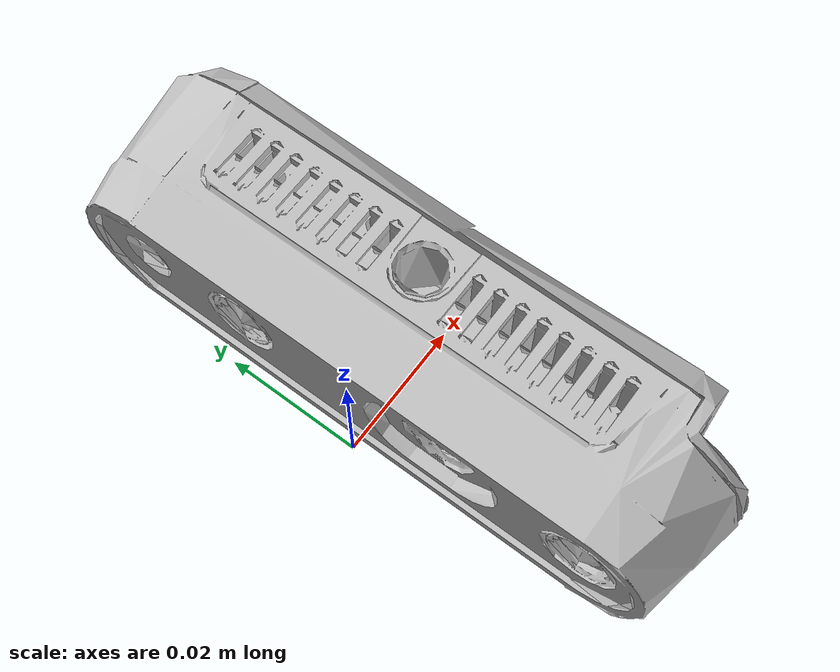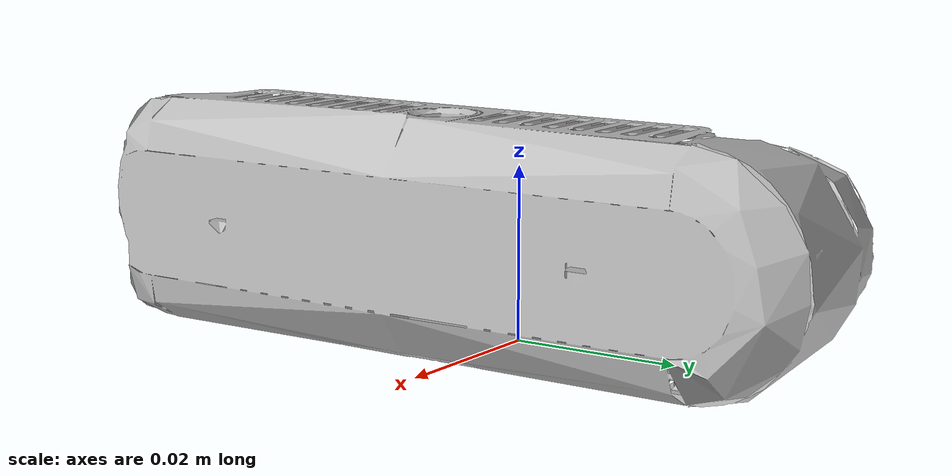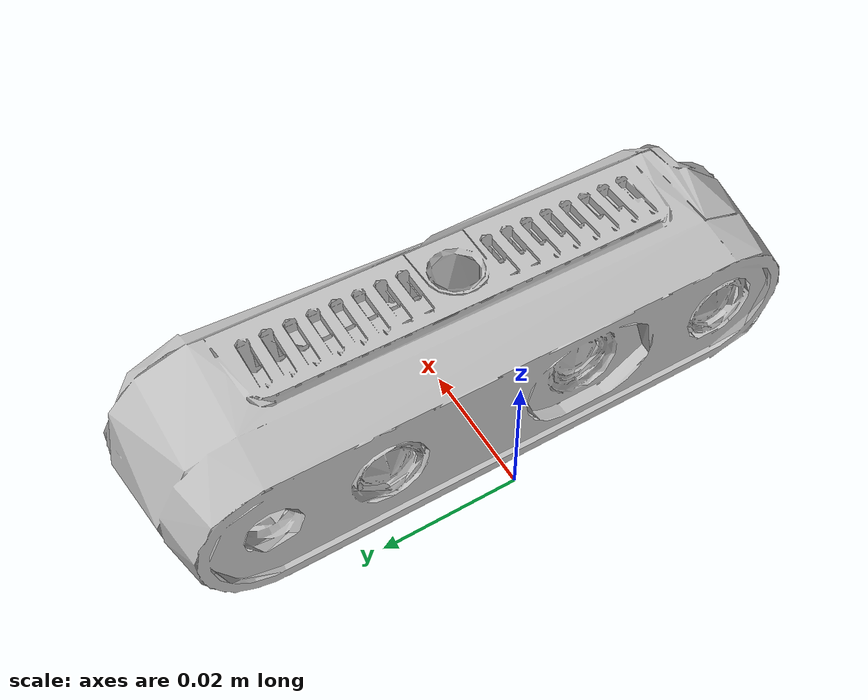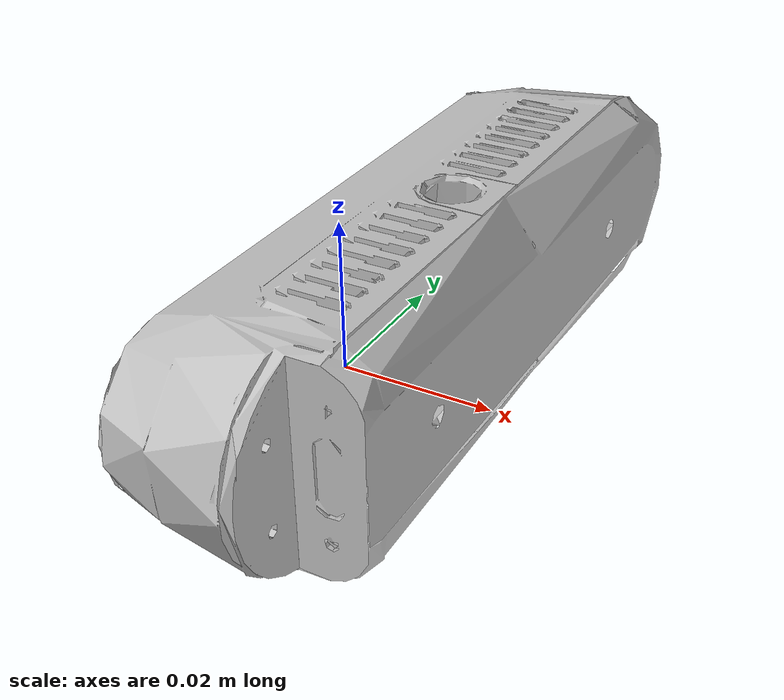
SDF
<?xml version="1.0" ?>
<sdf version="1.6">
  <model name='d435i'>
    <pose frame="">0 0 0.015 0 0 0</pose>
    <link name="camera">
      <inertial>
        <mass>0.0615752</mass>
        <inertia>
          <ixx>9.108e-05</ixx>
          <ixy>0</ixy>
          <ixz>0</ixz>
          <iyy>2.51e-06</iyy>
          <iyz>0</iyz>
          <izz>8.931e-05</izz>
        </inertia>
        <pose frame=''>0 0 0 0 -0 0</pose>
      </inertial>
      <self_collide>0</self_collide>
      <enable_wind>0</enable_wind>
      <kinematic>0</kinematic>
      <gravity>1</gravity>
      <visual name="visual">
        <pose>0 0 0 -1.570796 0 1.570796</pose>
        <geometry>
          <mesh>
            <uri>model://realsense2_description/meshes/d435.dae</uri>
          </mesh>
        </geometry>
      </visual>
      <collision name='collision'>
        <laser_retro>0</laser_retro>
        <max_contacts>10</max_contacts>
        <pose frame=''>0 0 0 0 -0 0</pose>
        <geometry>
          <box>
            <size>0.0078 0.130 0.0192</size>
          </box>
        </geometry>
        <surface>
          <friction>
            <ode>
              <mu>1</mu>
              <mu2>1</mu2>
              <fdir1>0 0 0</fdir1>
              <slip1>0</slip1>
              <slip2>0</slip2>
            </ode>
            <torsional>
              <coefficient>1</coefficient>
              <patch_radius>0</patch_radius>
              <surface_radius>0</surface_radius>
              <use_patch_radius>1</use_patch_radius>
              <ode>
                <slip>0</slip>
              </ode>
            </torsional>
          </friction>
          <bounce>
            <restitution_coefficient>0</restitution_coefficient>
            <threshold>1e+06</threshold>
          </bounce>
          <contact>
            <collide_without_contact>0</collide_without_contact>
            <collide_without_contact_bitmask>1</collide_without_contact_bitmask>
            <collide_bitmask>1</collide_bitmask>
            <ode>
              <soft_cfm>0</soft_cfm>
              <soft_erp>0.2</soft_erp>
              <kp>1e+13</kp>
              <kd>1</kd>
              <max_vel>0.01</max_vel>
              <min_depth>0</min_depth>
            </ode>
            <bullet>
              <split_impulse>1</split_impulse>
              <split_impulse_penetration_threshold>-0.01</split_impulse_penetration_threshold>
              <soft_cfm>0</soft_cfm>
              <soft_erp>0.2</soft_erp>
              <kp>1e+13</kp>
              <kd>1</kd>
            </bullet>
          </contact>
        </surface>
      </collision>
      <sensor name="imu_sensor" type="imu">
      <always_on>true</always_on>
      <update_rate>100</update_rate>
      <visualize>true</visualize>
      <topic>__default_topic__</topic>
      <plugin filename="libgazebo_ros_imu_sensor.so" name="imu_plugin">
        <robotNamespace>test</robotNamespace>
        <topicName>d435i/imu</topicName>
        <bodyName>imu_link</bodyName>
        <updateRateHZ>10.0</updateRateHZ>
        <gaussianNoise>0.0</gaussianNoise>
        <xyzOffset>0 0 0</xyzOffset>
        <rpyOffset>0 0 0</rpyOffset>
        <frameName>imu_link</frameName>
        <initialOrientationAsReference>false</initialOrientationAsReference>
      </plugin>
      <pose>0 0 0 0 0 0</pose>
    </sensor>
       <sensor name="color" type="camera">
        <pose frame="">0 -0.046 0.004 0 0 0</pose>
        <camera name="__default__">
          <horizontal_fov>1.047</horizontal_fov>
          <image>
            <width>640</width>
            <height>480</height>
            <format>RGB_INT8</format>
          </image>
          <clip>
            <near>0.1</near>
            <far>100</far>
          </clip>
          <noise>
            <type>gaussian</type>
            <mean>0.0</mean>
            <stddev>0.007</stddev>
          </noise>
        </camera>
        <always_on>1</always_on>
        <update_rate>60</update_rate>
        <visualize>1</visualize>
        <plugin name="camera_controller" filename="libgazebo_ros_camera.so">
          <alwaysOn>true</alwaysOn>
          <updateRate>0.0</updateRate>
          <cameraName>d435i/color</cameraName>
          <imageTopicName>image_raw</imageTopicName>
          <cameraInfoTopicName>camera_info</cameraInfoTopicName>
          <frameName>camera_link</frameName>
          <hackBaseline>0.07</hackBaseline>
          <distortionK1>0.0</distortionK1>
          <distortionK2>0.0</distortionK2>
          <distortionK3>0.0</distortionK3>
          <distortionT1>0.0</distortionT1>
          <distortionT2>0.0</distortionT2>
        </plugin>
      </sensor>
      <sensor name="ired_left" type="camera">
        <pose frame="">0 -0.06 0.004 0 0 0</pose>
        <camera name="left">
          <horizontal_fov>1.047</horizontal_fov>
          <image>
            <width>640</width>
            <height>480</height>
            <format>L_INT8</format>
          </image>
          <clip>
            <near>0.1</near>
            <far>100</far>
          </clip>
          <noise>
            <type>gaussian</type>
            <mean>0.0</mean>
            <stddev>0.007</stddev>
          </noise>
          <distortion>
            <k1>0.0027850474945532505</k1>
            <k2>-0.005865692434342952</k2>
            <p1>-0.001072612090641944</p1>
            <p2>0.0014691347421880948</p2>
          </distortion>
          <lens>
            <intrinsics>
              <fx>381.9464518100138 </fx>
              <fy>381.4329659488975</fy>
              <cx>326.62853519597803</cx>
              <cy>243.91977405884404</cy>
            </intrinsics>
          </lens>
        </camera>
        <always_on>1</always_on>
        <update_rate>60</update_rate>
        <visualize>0</visualize>
        <plugin name="left_controller" filename="libgazebo_ros_camera.so">
          <robotNamespace>test</robotNamespace>
          <alwaysOn>true</alwaysOn>
          <updateRate>0.0</updateRate>
          <cameraName>d435i/infra1</cameraName>
          <imageTopicName>image_raw</imageTopicName>
          <cameraInfoTopicName>camera_info</cameraInfoTopicName>
          <frameName>left</frameName>
          <hackBaseline>0.07</hackBaseline>
          <distortionK1>0.0</distortionK1>
          <distortionK2>0.0</distortionK2>
          <distortionK3>0.0</distortionK3>
          <distortionT1>0.0</distortionT1>
          <distortionT2>0.0</distortionT2>
        </plugin>
      </sensor>
      <sensor name="ired_right" type="camera">
        <pose frame="">0 0.01 0.004 0 0 0</pose>
        <camera name="right">
          <horizontal_fov>1.047</horizontal_fov>
          <image>
            <width>640</width>
            <height>480</height>
            <format>L_INT8</format>
          </image>
          <clip>
            <near>0.1</near>
            <far>100</far>
          </clip>
          <noise>
            <type>gaussian</type>
            <mean>0.0</mean>
            <stddev>0.007</stddev>
          </noise>
          <distortion>
            <k1>0.00278106154377129</k1>
            <k2>-0.00540454719158858</k2>
            <p1>-0.0010090283986047663</p1>
            <p2>0.0012375785133337909</p2>
          </distortion>
          <lens>
            <intrinsics>
              <fx>382.045479426804</fx>
              <fy>381.53486030547083</fy>
              <cx>326.13159384404105</cx>
              <cy>244.49852378472505</cy>
            </intrinsics>
          </lens>
        </camera>
        <always_on>1</always_on>
        <update_rate>60</update_rate>
        <visualize>0</visualize>
        <plugin name="right_controller" filename="libgazebo_ros_camera.so">
          <alwaysOn>true</alwaysOn>
          <updateRate>0.0</updateRate>
          <cameraName>d435i/infra2</cameraName>
          <imageTopicName>image_raw</imageTopicName>
          <cameraInfoTopicName>camera_info</cameraInfoTopicName>
          <frameName>right</frameName>
          <hackBaseline>0.07</hackBaseline>
          <distortionK1>0.0</distortionK1>
          <distortionK2>0.0</distortionK2>
          <distortionK3>0.0</distortionK3>
          <distortionT1>0.0</distortionT1>
          <distortionT2>0.0</distortionT2>
        </plugin>
      </sensor>
      <sensor name="depth" type="depth">
        <pose frame="cam_link">0 -0.03 0.004 0 0 0</pose>
        <camera name="depth">
          <horizontal_fov>1.047</horizontal_fov>
          <image>
            <width>640</width>
            <height>480</height>
          </image>
          <clip>
            <near>0.1</near>
            <far>100</far>
          </clip>
          <noise>
            <type>gaussian</type>
            <mean>0.0</mean>
            <stddev>0.007</stddev>
          </noise>
        </camera>
        <always_on>1</always_on>
        <update_rate>60</update_rate>
        <visualize>0</visualize>
        <plugin name="d435i_depth" filename="libgazebo_ros_openni_kinect.so">
          <baseline>0.2</baseline>
          <alwaysOn>true</alwaysOn>
          <updateRate>1.0</updateRate>
          <cameraName>d435i</cameraName>
          <imageTopicName>depth/image_raw</imageTopicName>
          <cameraInfoTopicName>depth/camera_info</cameraInfoTopicName>
          <depthImageTopicName>depth/image_raw</depthImageTopicName>
          <depthImageInfoTopicName>depth/camera_info</depthImageInfoTopicName>
          <pointCloudTopicName>depth/points</pointCloudTopicName>
          <frameName>d435i</frameName>
          <pointCloudCutoff>0.5</pointCloudCutoff>
          <distortionK1>0.00000001</distortionK1>
          <distortionK2>0.00000001</distortionK2>
          <distortionK3>0.00000001</distortionK3>
          <distortionT1>0.00000001</distortionT1>
          <distortionT2>0.00000001</distortionT2>
          <CxPrime>0</CxPrime>
          <Cx>0</Cx>
          <Cy>0</Cy>
          <focalLength>0</focalLength>
          <hackBaseline>0</hackBaseline>
        </plugin>
      </sensor>
    </link>
  </model>
</sdf>
